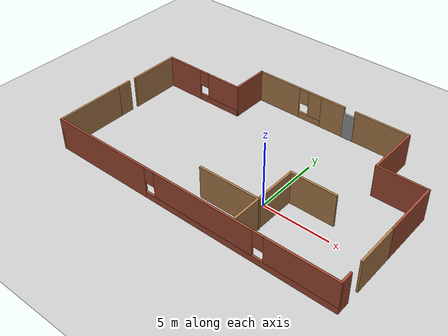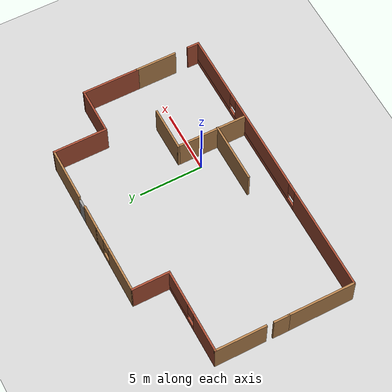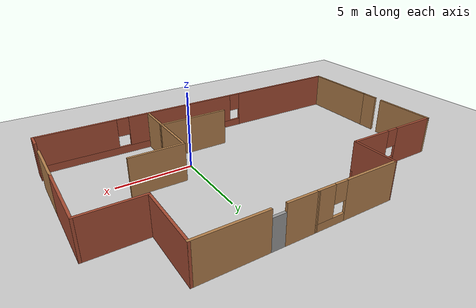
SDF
<sdf version="1.6">
 <world name="default">
  <model name="ground_plane">
   <static>1</static>
   <link name="link">
    <collision name="collision">
     <geometry><plane><normal>0 0 1</normal><size>100 100</size></plane></geometry>
     <surface>
      <contact><collide_bitmask>65535</collide_bitmask></contact>
      <friction><ode><mu>100</mu><mu2>50</mu2></ode></friction>
     </surface>
    </collision>
    <visual name="visual">
     <cast_shadows>0</cast_shadows>
     <geometry><plane><normal>0 0 1</normal><size>100 100</size></plane></geometry>
     <material>
      <script><uri>file://media/materials/scripts/gazebo.material</uri><name>Gazebo/Grey</name></script>
     </material>
    </visual>
   </link>
  </model>
  <model name="layout_bare">
   <pose>-2.93829 2.61568 0 0 -0 0</pose>
   <link name="Door_2">
    <collision name="Door_2_Collision">
     <geometry><box><size>0.9 0.17 2</size></box></geometry>
     <pose>0 0 1 0 -0 0</pose>
    </collision>
    <visual name="Door_2_Visual">
     <pose>0 0 1 0 -0 0</pose>
     <geometry><box><size>0.9 0.17 2</size></box></geometry>
     <material>
      <script><uri>file://media/materials/scripts/gazebo.material</uri><name>Gazebo/Grey</name></script>
     </material>
    </visual>
    <pose>3.13116 6.76354 0 0 -0 0</pose>
   </link>
   <link name="Wall_10">
    <collision name="Wall_10_Collision">
     <geometry><box><size>4.25 0.15 2.5</size></box></geometry>
     <pose>0 0 1.25 0 -0 0</pose>
    </collision>
    <visual name="Wall_10_Visual">
     <pose>0 0 1.25 0 -0 0</pose>
     <geometry><box><size>4.25 0.15 2.5</size></box></geometry>
     <material>
      <script><uri>file://media/materials/scripts/gazebo.material</uri><name>Gazebo/Wood</name></script>
      <ambient>1 1 1 1</ambient>
     </material>
     <meta><layer>0</layer></meta>
    </visual>
    <pose>5.65 6.77497 0 0 -0 0</pose>
   </link>
   <link name="Wall_11">
    <collision name="Wall_11_Collision">
     <geometry><box><size>4.25 0.15 2.5</size></box></geometry>
     <pose>0 0 1.25 0 -0 0</pose>
    </collision>
    <visual name="Wall_11_Visual">
     <pose>0 0 1.25 0 -0 0</pose>
     <geometry><box><size>4.25 0.15 2.5</size></box></geometry>
     <material>
      <script><uri>file://media/materials/scripts/gazebo.material</uri><name>Gazebo/Bricks</name></script>
      <ambient>1 1 1 1</ambient>
     </material>
     <meta><layer>0</layer></meta>
    </visual>
    <pose>7.7 4.72497 0 0 0 -1.5708</pose>
   </link>
   <link name="Wall_12">
    <collision name="Wall_12_Collision">
     <geometry><box><size>3.75 0.15 2.5</size></box></geometry>
     <pose>0 0 1.25 0 -0 0</pose>
    </collision>
    <visual name="Wall_12_Visual">
     <pose>0 0 1.25 0 -0 0</pose>
     <geometry><box><size>3.75 0.15 2.5</size></box></geometry>
     <material>
      <script><uri>file://media/materials/scripts/gazebo.material</uri><name>Gazebo/Bricks</name></script>
      <ambient>1 1 1 1</ambient>
     </material>
     <meta><layer>0</layer></meta>
    </visual>
    <pose>9.5 2.67497 0 0 -0 0</pose>
   </link>
   <link name="Wall_13">
    <collision name="Wall_13_Collision">
     <geometry><box><size>4.5 0.15 2.5</size></box></geometry>
     <pose>0 0 1.25 0 -0 0</pose>
    </collision>
    <visual name="Wall_13_Visual">
     <pose>0 0 1.25 0 -0 0</pose>
     <geometry><box><size>4.5 0.15 2.5</size></box></geometry>
     <material>
      <script><uri>file://media/materials/scripts/gazebo.material</uri><name>Gazebo/Bricks</name></script>
      <ambient>1 1 1 1</ambient>
     </material>
     <meta><layer>0</layer></meta>
    </visual>
    <pose>11.3 0.499974 0 0 0 -1.5708</pose>
   </link>
   <link name="Wall_15">
    <collision name="Wall_15_Collision">
     <geometry><box><size>1.25 0.15 2.5</size></box></geometry>
     <pose>0 0 1.25 0 -0 0</pose>
    </collision>
    <visual name="Wall_15_Visual">
     <pose>0 0 1.25 0 -0 0</pose>
     <geometry><box><size>1.25 0.15 2.5</size></box></geometry>
     <material>
      <script><uri>file://media/materials/scripts/gazebo.material</uri><name>Gazebo/Wood</name></script>
      <ambient>1 1 1 1</ambient>
     </material>
     <meta><layer>0</layer></meta>
    </visual>
    <pose>-11.3 -1.12503 0 0 -0 1.5708</pose>
   </link>
   <link name="Wall_17">
    <collision name="Wall_17_Collision">
     <geometry><box><size>4 0.15 2.5</size></box></geometry>
     <pose>0 0 1.25 0 -0 0</pose>
    </collision>
    <visual name="Wall_17_Visual">
     <pose>0 0 1.25 0 -0 0</pose>
     <geometry><box><size>4 0.15 2.5</size></box></geometry>
     <material>
      <script><uri>file://media/materials/scripts/gazebo.material</uri><name>Gazebo/Wood</name></script>
      <ambient>1 1 1 1</ambient>
     </material>
     <meta><layer>0</layer></meta>
    </visual>
    <pose>-11.2701 1.99614 0 0 -0 1.5708</pose>
   </link>
   <link name="Wall_18">
    <pose>-7.97011 3.92114 0 0 -0 0</pose>
    <visual name="Wall_18_Visual_0">
     <pose>-1.82628 0 1.25 0 -0 0</pose>
     <geometry><box><size>3.09743 0.15 2.5</size></box></geometry>
     <material>
      <script><uri>file://media/materials/scripts/gazebo.material</uri><name>Gazebo/Bricks</name></script>
      <ambient>1 1 1 1</ambient>
     </material>
     <meta><layer>0</layer></meta>
    </visual>
    <collision name="Wall_18_Collision_0">
     <geometry><box><size>3.09743 0.15 2.5</size></box></geometry>
     <pose>-1.82628 0 1.25 0 -0 0</pose>
    </collision>
    <visual name="Wall_18_Visual_1">
     <pose>1.54872 0 0.25 0 -0 0</pose>
     <geometry><box><size>3.65257 0.15 0.5</size></box></geometry>
     <material>
      <script><uri>file://media/materials/scripts/gazebo.material</uri><name>Gazebo/Bricks</name></script>
      <ambient>1 1 1 1</ambient>
     </material>
     <meta><layer>0</layer></meta>
    </visual>
    <collision name="Wall_18_Collision_1">
     <geometry><box><size>3.65257 0.15 0.5</size></box></geometry>
     <pose>1.54872 0 0.25 0 -0 0</pose>
    </collision>
    <visual name="Wall_18_Visual_2">
     <pose>1.94872 0 1.5 0 -0 0</pose>
     <geometry><box><size>2.85256 0.15 2</size></box></geometry>
     <material>
      <script><uri>file://media/materials/scripts/gazebo.material</uri><name>Gazebo/Bricks</name></script>
      <ambient>1 1 1 1</ambient>
     </material>
     <meta><layer>0</layer></meta>
    </visual>
    <collision name="Wall_18_Collision_2">
     <geometry><box><size>2.85256 0.15 2</size></box></geometry>
     <pose>1.94872 0 1.5 0 -0 0</pose>
    </collision>
    <visual name="Wall_18_Visual_3">
     <pose>0.122435 0 1.9 0 -0 0</pose>
     <geometry><box><size>0.8 0.15 1.2</size></box></geometry>
     <material>
      <script><uri>file://media/materials/scripts/gazebo.material</uri><name>Gazebo/Bricks</name></script>
      <ambient>1 1 1 1</ambient>
     </material>
     <meta><layer>0</layer></meta>
    </visual>
    <collision name="Wall_18_Collision_3">
     <geometry><box><size>0.8 0.15 1.2</size></box></geometry>
     <pose>0.122435 0 1.9 0 -0 0</pose>
    </collision>
   </link>
   <link name="Wall_19">
    <collision name="Wall_19_Collision">
     <geometry><box><size>3 0.15 2.5</size></box></geometry>
     <pose>0 0 1.25 0 -0 0</pose>
    </collision>
    <visual name="Wall_19_Visual">
     <pose>0 0 1.25 0 -0 0</pose>
     <geometry><box><size>3 0.15 2.5</size></box></geometry>
     <material>
      <script><uri>file://media/materials/scripts/gazebo.material</uri><name>Gazebo/Bricks</name></script>
      <ambient>1 1 1 1</ambient>
     </material>
     <meta><layer>0</layer></meta>
    </visual>
    <pose>-4.67011 5.34614 0 0 -0 1.5708</pose>
   </link>
   <link name="Wall_21">
    <pose>-1.94728 6.77306 0 0 -0 0.000703</pose>
    <visual name="Wall_21_Visual_0">
     <pose>-0.986881 0 1.25 0 -0 0</pose>
     <geometry><box><size>3.62188 0.15 2.5</size></box></geometry>
     <material>
      <script><uri>file://media/materials/scripts/gazebo.material</uri><name>Gazebo/Wood</name></script>
      <ambient>1 1 1 1</ambient>
     </material>
     <meta><layer>0</layer></meta>
    </visual>
    <collision name="Wall_21_Collision_0">
     <geometry><box><size>3.62188 0.15 2.5</size></box></geometry>
     <pose>-0.986881 0 1.25 0 -0 0</pose>
    </collision>
    <visual name="Wall_21_Visual_1">
     <pose>1.81094 0 0.25 0 -0 0</pose>
     <geometry><box><size>1.97376 0.15 0.5</size></box></geometry>
     <material>
      <script><uri>file://media/materials/scripts/gazebo.material</uri><name>Gazebo/Wood</name></script>
      <ambient>1 1 1 1</ambient>
     </material>
     <meta><layer>0</layer></meta>
    </visual>
    <collision name="Wall_21_Collision_1">
     <geometry><box><size>1.97376 0.15 0.5</size></box></geometry>
     <pose>1.81094 0 0.25 0 -0 0</pose>
    </collision>
    <visual name="Wall_21_Visual_2">
     <pose>2.21094 0 1.5 0 -0 0</pose>
     <geometry><box><size>1.17376 0.15 2</size></box></geometry>
     <material>
      <script><uri>file://media/materials/scripts/gazebo.material</uri><name>Gazebo/Wood</name></script>
      <ambient>1 1 1 1</ambient>
     </material>
     <meta><layer>0</layer></meta>
    </visual>
    <collision name="Wall_21_Collision_2">
     <geometry><box><size>1.17376 0.15 2</size></box></geometry>
     <pose>2.21094 0 1.5 0 -0 0</pose>
    </collision>
    <visual name="Wall_21_Visual_3">
     <pose>1.22406 0 1.9 0 -0 0</pose>
     <geometry><box><size>0.8 0.15 1.2</size></box></geometry>
     <material>
      <script><uri>file://media/materials/scripts/gazebo.material</uri><name>Gazebo/Wood</name></script>
      <ambient>1 1 1 1</ambient>
     </material>
     <meta><layer>0</layer></meta>
    </visual>
    <collision name="Wall_21_Collision_3">
     <geometry><box><size>0.8 0.15 1.2</size></box></geometry>
     <pose>1.22406 0 1.9 0 -0 0</pose>
    </collision>
   </link>
   <link name="Wall_23">
    <collision name="Wall_23_Collision">
     <geometry><box><size>5.25 0.15 2.5</size></box></geometry>
     <pose>0 0 1.25 0 -0 0</pose>
    </collision>
    <visual name="Wall_23_Visual">
     <pose>0 0 1.25 0 -0 0</pose>
     <geometry><box><size>5.25 0.15 2.5</size></box></geometry>
     <material>
      <script><uri>file://media/materials/scripts/gazebo.material</uri><name>Gazebo/Wood</name></script>
      <ambient>1 1 1 1</ambient>
     </material>
     <meta><layer>0</layer></meta>
    </visual>
    <pose>-11.3 -4.22503 0 0 0 -1.5708</pose>
   </link>
   <link name="Wall_24">
    <pose>0 -6.77503 0 0 -0 0</pose>
    <visual name="Wall_24_Visual_0">
     <pose>-7.31725 0 1.25 0 -0 0</pose>
     <geometry><box><size>8.11549 0.15 2.5</size></box></geometry>
     <material>
      <script><uri>file://media/materials/scripts/gazebo.material</uri><name>Gazebo/Bricks</name></script>
      <ambient>1 1 1 1</ambient>
     </material>
     <meta><layer>0</layer></meta>
    </visual>
    <collision name="Wall_24_Collision_0">
     <geometry><box><size>8.11549 0.15 2.5</size></box></geometry>
     <pose>-7.31725 0 1.25 0 -0 0</pose>
    </collision>
    <visual name="Wall_24_Visual_1">
     <pose>4.05775 0 0.25 0 -0 0</pose>
     <geometry><box><size>14.6345 0.15 0.5</size></box></geometry>
     <material>
      <script><uri>file://media/materials/scripts/gazebo.material</uri><name>Gazebo/Bricks</name></script>
      <ambient>1 1 1 1</ambient>
     </material>
     <meta><layer>0</layer></meta>
    </visual>
    <collision name="Wall_24_Collision_1">
     <geometry><box><size>14.6345 0.15 0.5</size></box></geometry>
     <pose>4.05775 0 0.25 0 -0 0</pose>
    </collision>
    <visual name="Wall_24_Visual_2">
     <pose>1.46491 0 1.5 0 -0 0</pose>
     <geometry><box><size>7.84884 0.15 2</size></box></geometry>
     <material>
      <script><uri>file://media/materials/scripts/gazebo.material</uri><name>Gazebo/Bricks</name></script>
      <ambient>1 1 1 1</ambient>
     </material>
     <meta><layer>0</layer></meta>
    </visual>
    <collision name="Wall_24_Collision_2">
     <geometry><box><size>7.84884 0.15 2</size></box></geometry>
     <pose>1.46491 0 1.5 0 -0 0</pose>
    </collision>
    <visual name="Wall_24_Visual_3">
     <pose>8.78217 0 1.5 0 -0 0</pose>
     <geometry><box><size>5.18567 0.15 2</size></box></geometry>
     <material>
      <script><uri>file://media/materials/scripts/gazebo.material</uri><name>Gazebo/Bricks</name></script>
      <ambient>1 1 1 1</ambient>
     </material>
     <meta><layer>0</layer></meta>
    </visual>
    <collision name="Wall_24_Collision_3">
     <geometry><box><size>5.18567 0.15 2</size></box></geometry>
     <pose>8.78217 0 1.5 0 -0 0</pose>
    </collision>
    <visual name="Wall_24_Visual_4">
     <pose>-2.85951 0 1.9 0 -0 0</pose>
     <geometry><box><size>0.8 0.15 1.2</size></box></geometry>
     <material>
      <script><uri>file://media/materials/scripts/gazebo.material</uri><name>Gazebo/Bricks</name></script>
      <ambient>1 1 1 1</ambient>
     </material>
     <meta><layer>0</layer></meta>
    </visual>
    <collision name="Wall_24_Collision_4">
     <geometry><box><size>0.8 0.15 1.2</size></box></geometry>
     <pose>-2.85951 0 1.9 0 -0 0</pose>
    </collision>
    <visual name="Wall_24_Visual_5">
     <pose>5.78933 0 1.9 0 -0 0</pose>
     <geometry><box><size>0.8 0.15 1.2</size></box></geometry>
     <material>
      <script><uri>file://media/materials/scripts/gazebo.material</uri><name>Gazebo/Bricks</name></script>
      <ambient>1 1 1 1</ambient>
     </material>
     <meta><layer>0</layer></meta>
    </visual>
    <collision name="Wall_24_Collision_5">
     <geometry><box><size>0.8 0.15 1.2</size></box></geometry>
     <pose>5.78933 0 1.9 0 -0 0</pose>
    </collision>
   </link>
   <link name="Wall_25">
    <collision name="Wall_25_Collision">
     <geometry><box><size>1 0.15 2.5</size></box></geometry>
     <pose>0 0 1.25 0 -0 0</pose>
    </collision>
    <visual name="Wall_25_Visual">
     <pose>0 0 1.25 0 -0 0</pose>
     <geometry><box><size>1 0.15 2.5</size></box></geometry>
     <material>
      <script><uri>file://media/materials/scripts/gazebo.material</uri><name>Gazebo/Bricks</name></script>
      <ambient>1 1 1 1</ambient>
     </material>
     <meta><layer>0</layer></meta>
    </visual>
    <pose>11.3 -6.35003 0 0 -0 1.5708</pose>
   </link>
   <link name="Wall_27">
    <collision name="Wall_27_Collision">
     <geometry><box><size>3.25 0.15 2.5</size></box></geometry>
     <pose>0 0 1.25 0 -0 0</pose>
    </collision>
    <visual name="Wall_27_Visual">
     <pose>0 0 1.25 0 -0 0</pose>
     <geometry><box><size>3.25 0.15 2.5</size></box></geometry>
     <material>
      <script><uri>file://media/materials/scripts/gazebo.material</uri><name>Gazebo/Wood</name></script>
      <ambient>1 1 1 1</ambient>
     </material>
     <meta><layer>0</layer></meta>
    </visual>
    <pose>11.3 -3.22503 0 0 0 -1.5708</pose>
   </link>
   <link name="Wall_29">
    <collision name="Wall_29_Collision">
     <geometry><box><size>5.5 0.15 2.5</size></box></geometry>
     <pose>0 0 1.25 0 -0 0</pose>
    </collision>
    <visual name="Wall_29_Visual">
     <pose>0 0 1.25 0 -0 0</pose>
     <geometry><box><size>5.5 0.15 2.5</size></box></geometry>
     <material>
      <script><uri>file://media/materials/scripts/gazebo.material</uri><name>Gazebo/Wood</name></script>
      <ambient>1 1 1 1</ambient>
     </material>
     <meta><layer>0</layer></meta>
    </visual>
    <pose>3.97911 -3.95656 0 0 0 -1.5708</pose>
   </link>
   <link name="Wall_31">
    <collision name="Wall_31_Collision">
     <geometry><box><size>3.5 0.15 2.5</size></box></geometry>
     <pose>0 0 1.25 0 -0 0</pose>
    </collision>
    <visual name="Wall_31_Visual">
     <pose>0 0 1.25 0 -0 0</pose>
     <geometry><box><size>3.5 0.15 2.5</size></box></geometry>
     <material>
      <script><uri>file://media/materials/scripts/gazebo.material</uri><name>Gazebo/Wood</name></script>
      <ambient>1 1 1 1</ambient>
     </material>
     <meta><layer>0</layer></meta>
    </visual>
    <pose>5.65411 -1.28156 0 0 -0 0</pose>
   </link>
   <link name="Wall_33">
    <collision name="Wall_33_Collision">
     <geometry><box><size>4.75 0.15 2.5</size></box></geometry>
     <pose>0 0 1.25 0 -0 0</pose>
    </collision>
    <visual name="Wall_33_Visual">
     <pose>0 0 1.25 0 -0 0</pose>
     <geometry><box><size>4.75 0.15 2.5</size></box></geometry>
     <material>
      <script><uri>file://media/materials/scripts/gazebo.material</uri><name>Gazebo/Wood</name></script>
      <ambient>1 1 1 1</ambient>
     </material>
     <meta><layer>0</layer></meta>
    </visual>
    <pose>1.71934 -4.49974 0 0 -0 3.14159</pose>
   </link>
   <link name="Wall_8">
    <collision name="Wall_8_Collision">
     <geometry><box><size>2 0.15 2.5</size></box></geometry>
     <pose>0 0 1.25 0 -0 0</pose>
    </collision>
    <visual name="Wall_8_Visual">
     <pose>0 0 1.25 0 -0 0</pose>
     <geometry><box><size>2 0.15 2.5</size></box></geometry>
     <material>
      <script><uri>file://media/materials/scripts/gazebo.material</uri><name>Gazebo/Wood</name></script>
      <ambient>1 1 1 1</ambient>
     </material>
     <meta><layer>0</layer></meta>
    </visual>
    <pose>1.70054 6.77497 0 0 -0 0</pose>
   </link>
   <static>1</static>
  </model>
 </world>
</sdf>
